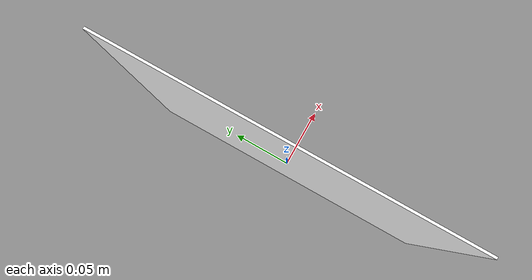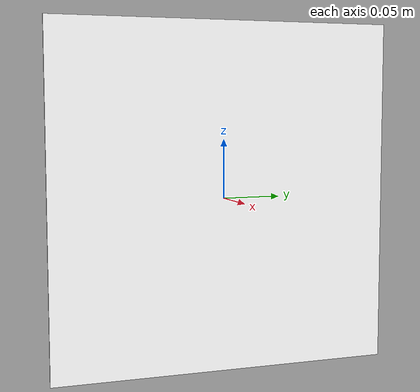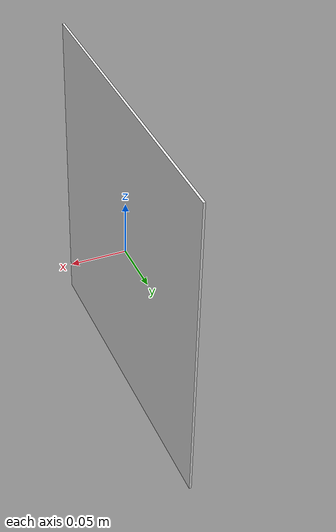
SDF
<?xml version="1.0"?>
<sdf version="1.10">
  <model name="face_billboard">
    <static>true</static>

    <plugin filename="gz-sim-pose-publisher-system"
            name="gz::sim::systems::PosePublisher">
      <publish_link_pose>false</publish_link_pose>
      <publish_nested_model_pose>false</publish_nested_model_pose>
      <publish_model_pose>true</publish_model_pose>
      <update_rate>10</update_rate>
    </plugin>

    <link name="link">
      <visual name="face_visual">
        <!-- Disable shadow casting so the transparent alpha edges don't cast
             a hard rectangular shadow from the billboard mesh boundary. -->
        <cast_shadows>false</cast_shadows>
        <geometry>
          <!--
            Thin in X (2 mm) so only the YZ faces are visible to the camera.
            0.3 × 0.3 m face area appears as ~76 px at 2 m (640×480, 60° FOV).
          -->
          <box>
            <size>0.002 0.3 0.3</size>
          </box>
        </geometry>
        <material>
          <ambient>1.0 1.0 1.0 1</ambient>
          <diffuse>1.0 1.0 1.0 0.99</diffuse>
          <pbr>
            <metal>
              <albedo_map>model://face_billboard/materials/textures/face_007.png</albedo_map>
              <metalness>0.0</metalness>
              <roughness>1.0</roughness>
            </metal>
          </pbr>
        </material>
      </visual>
    </link>
  </model>
</sdf>
